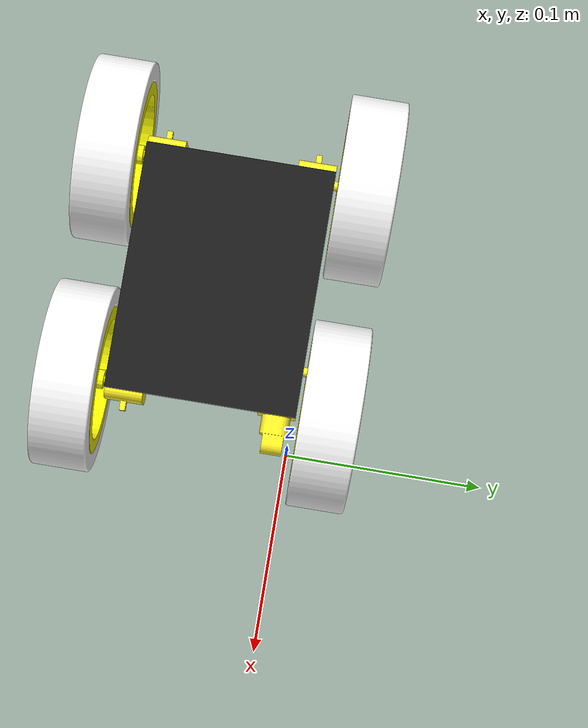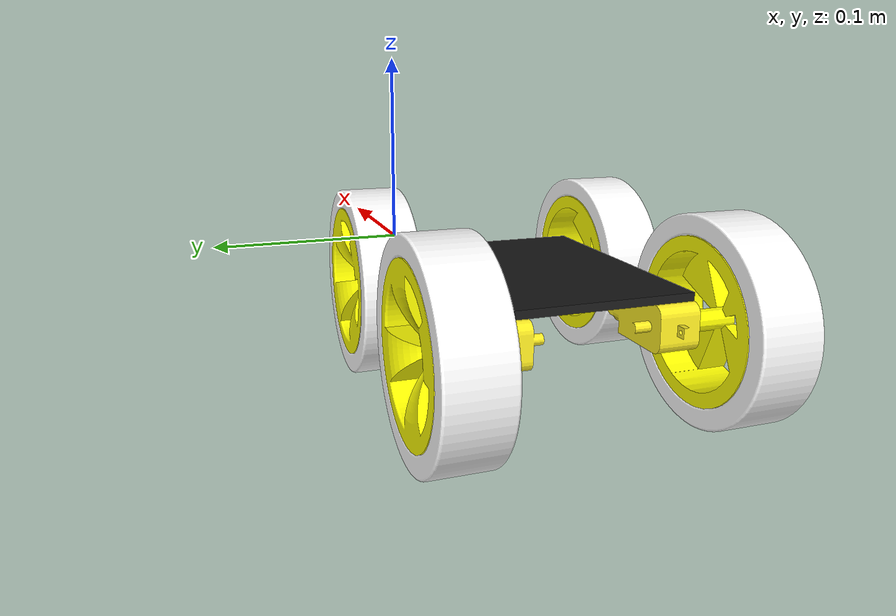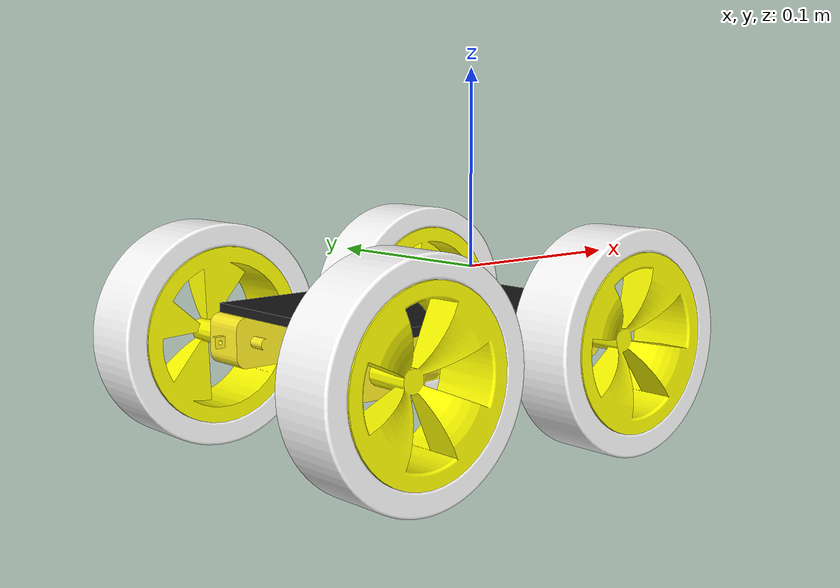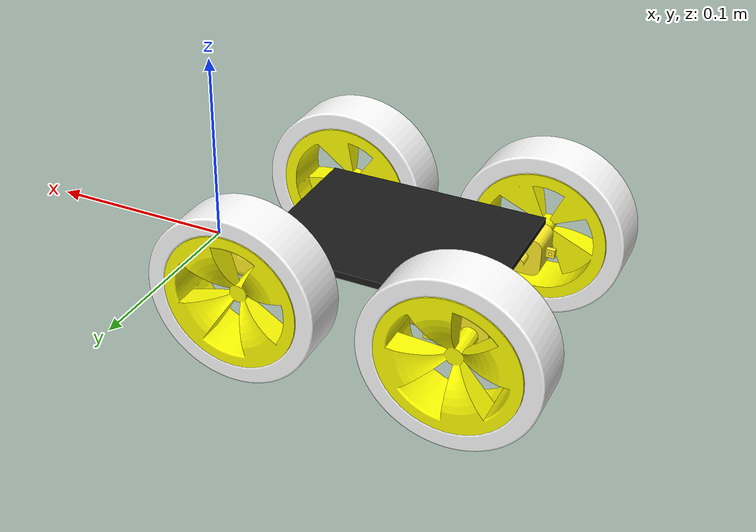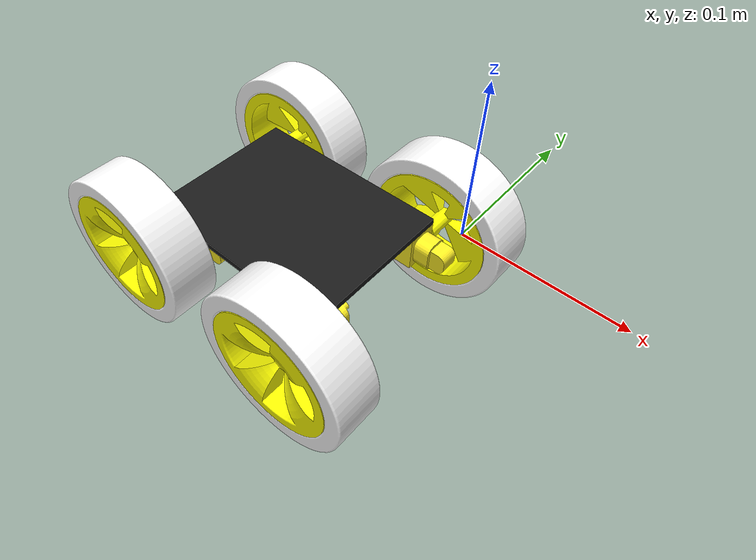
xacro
<?xml version="1.0"?>
<robot xmlns:xacro="http://www.ros.org/wiki/xacro">

	<!-- BASE LINK -->
	<link name="base_link">

	</link>

	<!-- CHASSIS LINK -->
	<joint name="chassis_joint" type="fixed">
		<parent link="base_link" />
		<child link="chassis_link"/>
		<origin xyz="0 0 0"/>
	</joint>

	<link name="chassis_link">
    	<inertial>
      		<origin xyz="-0.0852198749371951 -0.00475874794858555 0.04820238965209" rpy="0 0 0" />
      		<mass value="0.052" />
      		<inertia ixx="4.34026666666667E-05" ixy="1.38506496057656E-38" ixz="5.94094001424295E-21"
        	iyy="0.000116566666666667" iyz="-1.60681020716878E-23" izz="7.33026666666667E-05" />
    	</inertial>

    	<visual>
      		<origin xyz="0 0 0" rpy="0 0 0" />
      		<geometry>
        		<mesh filename="package://four_wheeled_robot/meshes/chassis_link.STL" />
      		</geometry>
      		<material name="">
        		<color rgba="0.101960784313725 0.101960784313725 0.101960784313725 1" />
      		</material>
    	</visual>

    	<collision>
      		<origin xyz="0 0 0" rpy="0 0 0" />
      		<geometry>
        		<mesh filename="package://four_wheeled_robot/meshes/chassis_link.STL" />
      		</geometry>
    	</collision>
  	</link>

	<gazebo reference="chassis_link">
		<material>Gazebo/Black</material>
	</gazebo>

	<!-- MOTOR1 LINK -->
	<joint name="motor1_joint" type="fixed">
    	<origin xyz="-0.13522 -0.088202 -0.0067587" rpy="0 0 0" />
    	<parent link="chassis_link" />
    	<child link="motor1_Link" />
    	<axis xyz="0 0 0" />
  	</joint>

	<link name="motor1_Link">
    	<inertial>
      		<origin xyz="0.00270571042552559 -4.16333634234434E-17 -0.011" rpy="0 0 0" />
      		<mass value="0.0194724998040617" />
      		<inertia ixx="1.30647781465528E-06" ixy="1.8766986143586E-22" ixz="-9.90836784579939E-21"
        	iyy="2.79499122781643E-06" iyz="-4.22738473239483E-24" izz="2.73953444645254E-06" />
    	</inertial>

    	<visual>
      		<origin xyz="0 0 0" rpy="0 0 0" />
      		<geometry>
        		<mesh filename="package://four_wheeled_robot/meshes/motor1_Link.STL" />
      		</geometry>
      		<material name="">
        		<color rgba="1 0.937254901960784 0.137254901960784 1" />
      		</material>
    	</visual>

    	<collision>
      		<origin xyz="0 0 0" rpy="0 0 0" />
      		<geometry>
        		<mesh filename="package://four_wheeled_robot/meshes/motor1_Link.STL" />
      		</geometry>
    	</collision>
  	</link>

	<gazebo reference="motor1_Link">
		<material>Gazebo/Yellow</material>
	</gazebo>

	<!-- WHEEL1 LINK -->
	<joint name="wheel1_joint" type="continuous">
    	<origin xyz="-0.0105 -0.032 -0.011" rpy="1.5708 0 0" />
    	<parent link="motor1_Link" />
    	<child link="wheel1_Link" />
    	<axis xyz="0 0 1" />
  	</joint>

	<link name="wheel1_Link">
    	<inertial>
      		<origin xyz="-6.66133814775094E-16 -3.01841884819964E-16 -0.00230999946278176" rpy="0 0 0" />
      		<mass value="0.047276589565131" />
      		<inertia ixx="2.48959993057061E-05" ixy="-5.1928000525321E-20" ixz="1.79367297624759E-19"
        	iyy="2.4895999305706E-05" iyz="-5.043743778255E-20" izz="4.25077560685963E-05" />
    	</inertial>

    	<visual>
      		<origin xyz="0 0 0" rpy="0 0 0" />
      		<geometry>
        		<mesh filename="package://four_wheeled_robot/meshes/wheel1_Link.STL" />
      		</geometry>
      		<material name="">
        		<color rgba="1 1 0 1" />
      		</material>
    	</visual>

    	<collision>
      		<origin xyz="0 0 0" rpy="0 0 0" />
      		<geometry>
        		<mesh filename="package://four_wheeled_robot/meshes/wheel1_Link.STL" />
      		</geometry>
    	</collision>
  	</link>

	<gazebo reference="wheel1_Link">
		<material>Gazebo/Yellow</material>
	</gazebo>

	<!-- TIRE1 LINK -->
	<joint name="tire1_joint" type="fixed">
    	<origin xyz="0 0 -0.005" rpy="0 0 0" />
    	<parent link="wheel1_Link" />
    	<child link="tire1_Link" />
	</joint>

	<link name="tire1_Link">
    	<inertial>
      		<origin xyz="0 -3.46944695195361E-18 -2.77555756156289E-17" rpy="0 0 0" />
      		<mass value="0.0900450328431281" />
      		<inertia ixx="9.29010340540992E-05" ixy="4.14441750853701E-20" ixz="2.68540865961104E-19"
        	iyy="9.29010340540992E-05" iyz="5.05977918171685E-21" izz="0.000172262082034564" />
    	</inertial>

    	<visual>
      		<origin xyz="0 0 0" rpy="0 0 0" />
      		<geometry>
        		<mesh filename="package://four_wheeled_robot/meshes/tire1_Link.STL" />
      		</geometry>
      		<material name="">
        		<color rgba="1 1 1 1" />
      		</material>
    	</visual>

    	<collision>
      		<origin xyz="0 0 0" rpy="0 0 0" />
      		<geometry>
        		<mesh filename="package://four_wheeled_robot/meshes/tire1_Link.STL" />
      		</geometry>
    	</collision>
  	</link>

	<gazebo reference="tire1_Link">
		<material>Gazebo/Black</material>
	</gazebo>

	<!-- MOTOR2 LINK -->
	<joint name="motor2_joint" type="fixed">
    	<origin xyz="-0.13522 -0.0082024 -0.0067587" rpy="0 0 0" />
    	<parent link="chassis_link" />
    	<child link="motor2_Link" />
    	<axis xyz="0 0 0" />
  	</joint>

	<link name="motor2_Link">
    	<inertial>
      		<origin xyz="0.00270571042552559 -3.12250225675825E-17 -0.011" rpy="0 0 0" />
      		<mass value="0.0194724998040617" />
      		<inertia ixx="1.30647781465528E-06" ixy="3.50642818155904E-22" ixz="-9.99085198409492E-21"
        	iyy="2.79499122781643E-06" iyz="8.53182582237749E-24" izz="2.73953444645254E-06" />
    	</inertial>

    	<visual>
      		<origin xyz="0 0 0" rpy="0 0 0" />
      		<geometry>
        		<mesh filename="package://four_wheeled_robot/meshes/motor2_Link.STL" />
      		</geometry>
      		<material name="">
        		<color rgba="1 0.937254901960784 0.137254901960784 1" />
      		</material>
    	</visual>

    	<collision>
      		<origin xyz="0 0 0" rpy="0 0 0" />
      		<geometry>
        		<mesh filename="package://four_wheeled_robot/meshes/motor2_Link.STL" />
      		</geometry>
    	</collision>
  	</link>

	<gazebo reference="motor2_Link">
		<material>Gazebo/Yellow</material>
	</gazebo>

	<!-- WHEEL2 LINK -->
	<joint name="wheel2_joint" type="continuous">
    	<origin xyz="-0.0105 0.032 -0.011" rpy="-1.5708 0 0" />
    	<parent link="motor2_Link" />
    	<child link="wheel2_Link" />
    	<axis xyz="0 0 -1" />
  	</joint>

	<link name="wheel2_Link">
    	<inertial>
      		<origin xyz="-2.24820162486594E-15 8.81239525796218E-16 -0.00230999946278173" rpy="0 0 0" />
      		<mass value="0.047276589565131" />
      		<inertia ixx="2.4895999305706E-05" ixy="-7.45367280092708E-20" ixz="7.79478520652575E-20"
        	iyy="2.4895999305706E-05" iyz="-9.64165431735149E-20" izz="4.25077560685963E-05" />
    	</inertial>

    	<visual>
      		<origin xyz="0 0 0" rpy="0 0 0" />
      		<geometry>
        		<mesh filename="package://four_wheeled_robot/meshes/wheel2_Link.STL" />
      		</geometry>
      		<material name="">
        		<color rgba="1 1 0 1" />
      		</material>
    	</visual>

    	<collision>
      		<origin xyz="0 0 0" rpy="0 0 0" />
      		<geometry>
        		<mesh filename="package://four_wheeled_robot/meshes/wheel2_Link.STL" />
      		</geometry>
    	</collision>
  	</link>

	<gazebo reference="wheel2_Link">
		<material>Gazebo/Yellow</material>
	</gazebo>

	<!-- TIRE2 LINK -->
	<joint name="tire2_joint" type="fixed">
    	<origin xyz="0 0 -0.005" rpy="0 0 0" />
    	<parent link="wheel2_Link" />
    	<child link="tire2_Link" />
  	</joint>

	<link name="tire2_Link">
    	<inertial>
      		<origin xyz="0 -3.46944695195361E-18 0" rpy="0 0 0" />
      		<mass value="0.0900450328431281" />
      		<inertia ixx="9.29010340540991E-05" ixy="-1.07413262716203E-20" ixz="-3.48850397206446E-22"
        	iyy="9.29010340540991E-05" iyz="-3.40168150669033E-21" izz="0.000172262082034564" />
    	</inertial>

    	<visual>
      		<origin xyz="0 0 0" rpy="0 0 0" />
      		<geometry>
        		<mesh filename="package://four_wheeled_robot/meshes/tire2_Link.STL" />
      		</geometry>
      		<material name="">
        		<color rgba="1 1 1 1" />
      		</material>
    	</visual>

    	<collision>
      		<origin xyz="0 0 0" rpy="0 0 0" />
      		<geometry>
        		<mesh filename="package://four_wheeled_robot/meshes/tire2_Link.STL" />
      		</geometry>
    	</collision>
  	</link>

	<gazebo reference="tire2_Link">
		<material>Gazebo/Black</material>
	</gazebo>

	<!-- MOTOR3 LINK -->
	<joint name="motor3_joint" type="fixed">
    	<origin xyz="-0.03522 -0.088202 -0.0067587" rpy="0 0 0" />
    	<parent link="chassis_link" />
    	<child link="motor3_Link" />
    	<axis xyz="0 0 0" />
  	</joint>

	<link name="motor3_Link">
    	<inertial>
      		<origin xyz="-0.0027057104255255 -2.77555756156289E-17 -0.0109999999999999" rpy="0 0 0" />
      		<mass value="0.0194724998040617" />
      		<inertia ixx="1.30647781465528E-06" ixy="-2.31398212112382E-22" ixz="2.67520476227251E-22"
        	iyy="2.79499122781643E-06" iyz="3.04492335017947E-23" izz="2.73953444645254E-06" />
    	</inertial>

    	<visual>
      		<origin xyz="0 0 0" rpy="0 0 0" />
      		<geometry>
        		<mesh filename="package://four_wheeled_robot/meshes/motor3_Link.STL" />
      		</geometry>
      		<material name="">
				<color rgba="1 0.937254901960784 0.137254901960784 1" />
      		</material>
    	</visual>

    	<collision>
      		<origin xyz="0 0 0" rpy="0 0 0" />
      		<geometry>
        		<mesh filename="package://four_wheeled_robot/meshes/motor3_Link.STL" />
      		</geometry>
    	</collision>
  	</link>

	<gazebo reference="motor3_Link">
		<material>Gazebo/Yellow</material>
	</gazebo>

	<!-- WHEEL3 LINK -->
	<joint name="wheel3_joint" type="continuous">
    	<origin xyz="0.0105 -0.032 -0.011" rpy="1.5708 0 0" />
    	<parent link="motor3_Link" />
    	<child link="wheel3_Link" />
    	<axis xyz="0 0 1" />
  	</joint>

	<link name="wheel3_Link">
    	<inertial>
      		<origin xyz="5.55111512312578E-16 4.33680868994202E-16 -0.00230999946278169" rpy="0 0 0" />
      		<mass value="0.047276589565131" />
      		<inertia ixx="2.48959993057062E-05" ixy="-2.95393951560817E-20" ixz="-1.1859142019731E-19"
        	iyy="2.48959993057061E-05" iyz="2.46499724573474E-20" izz="4.25077560685963E-05" />
    	</inertial>

    	<visual>
      		<origin xyz="0 0 0" rpy="0 0 0" />
      		<geometry>
        		<mesh filename="package://four_wheeled_robot/meshes/wheel3_Link.STL" />
      		</geometry>
      		<material name="">
        		<color rgba="1 1 0 1" />
      		</material>
    	</visual>

    	<collision>
      		<origin xyz="0 0 0" rpy="0 0 0" />
      		<geometry>
        		<mesh filename="package://four_wheeled_robot/meshes/wheel3_Link.STL" />
      		</geometry>
    	</collision>
  	</link>

	<gazebo reference="wheel3_Link">
		<material>Gazebo/Yellow</material>
	</gazebo>

	<!-- TIRE3 LINK -->
	<joint name="tire3_joint" type="fixed">
    	<origin xyz="0 0 -0.005" rpy="0 0 0" />
    	<parent link="wheel3_Link" />
    	<child link="tire3_Link" />
  	</joint>

	<link name="tire3_Link">
    	<inertial>
      		<origin xyz="-3.46944695195361E-18 6.93889390390723E-18 1.38777878078145E-17" rpy="0 0 0" />
      		<mass value="0.0900450328431282" />
      		<inertia ixx="9.29010340540992E-05" ixy="4.17490187137831E-20" ixz="1.32497514142168E-21"
        	iyy="9.29010340540992E-05" iyz="1.11298170171339E-20" izz="0.000172262082034564" />
    	</inertial>

    	<visual>
      		<origin xyz="0 0 0" rpy="0 0 0" />
      		<geometry>
        		<mesh filename="package://four_wheeled_robot/meshes/tire3_Link.STL" />
      		</geometry>
      		<material name="">
        		<color rgba="1 1 1 1" />
      		</material>
    	</visual>

    	<collision>
      		<origin xyz="0 0 0" rpy="0 0 0" />
      		<geometry>
        		<mesh filename="package://four_wheeled_robot/meshes/tire3_Link.STL" />
      		</geometry>
    	</collision>
  	</link>

	<gazebo reference="tire3_Link">
		<material>Gazebo/Black</material>
	</gazebo>

	<!-- MOTOR4 LINK -->
	<joint name="motor4_joint" type="fixed">
    	<origin xyz="-0.03522 -0.0082024 -0.0067587" rpy="0 0 0" />
    	<parent link="chassis_link" />
    	<child link="motor4_Link" />
    	<axis xyz="0 0 0" />
  	</joint>

	<link name="motor4_Link">
    	<inertial>
      		<origin xyz="-0.0027057104255255 -3.12250225675825E-17 -0.0109999999999999" rpy="0 0 0" />
      		<mass value="0.0194724998040617" />
      		<inertia ixx="1.30647781465528E-06" ixy="-2.5193748748934E-22" ixz="3.43693591802593E-22"
        	iyy="2.79499122781643E-06" iyz="-9.91040563271019E-24" izz="2.73953444645254E-06" />
    	</inertial>

    	<visual>
      		<origin xyz="0 0 0" rpy="0 0 0" />
      		<geometry>
        		<mesh filename="package://four_wheeled_robot/meshes/motor4_Link.STL" />
      		</geometry>
      		<material name="">
        		<color rgba="1 0.937254901960784 0.137254901960784 1" />
      		</material>
    	</visual>

    	<collision>
      		<origin xyz="0 0 0" rpy="0 0 0" />
      		<geometry>
        		<mesh filename="package://four_wheeled_robot/meshes/motor4_Link.STL" />
      		</geometry>
    	</collision>
  	</link>

	<gazebo reference="motor4_Link">
		<material>Gazebo/Yellow</material>
	</gazebo>

	<!-- WHEEL4 LINK -->
	<joint name="wheel4_joint" type="continuous">
    	<origin xyz="0.0105 0.032 -0.011" rpy="-1.5708 0 0" />
    	<parent link="motor4_Link" />
    	<child link="wheel4_Link" />
    	<axis xyz="0 0 -1" />
  	</joint>

	<link name="wheel4_Link">
    	<inertial>
      		<origin xyz="-6.73072708679001E-16 -2.1163626406917E-16 -0.00230999946278174" rpy="0 0 0" />
      		<mass value="0.047276589565131" />
      		<inertia ixx="2.48959993057061E-05" ixy="-6.81810082245302E-20" ixz="1.03831974662023E-19"
        	iyy="2.4895999305706E-05" iyz="-5.99868683581929E-20" izz="4.25077560685963E-05" />
    	</inertial>

    	<visual>
      		<origin xyz="0 0 0" rpy="0 0 0" />
      		<geometry>
        		<mesh filename="package://four_wheeled_robot/meshes/wheel4_Link.STL" />
      		</geometry>
      		<material name="">
        		<color rgba="1 1 0 1" />
      		</material>
    	</visual>

    	<collision>
      		<origin xyz="0 0 0" rpy="0 0 0" />
      		<geometry>
        		<mesh filename="package://four_wheeled_robot/meshes/wheel4_Link.STL" />
      		</geometry>
    	</collision>
  	</link>

	<gazebo reference="wheel4_Link">
		<material>Gazebo/Yellow</material>
	</gazebo>

	<!-- TIRE4 LINK -->
	<joint name="tire4_joint" type="fixed">
    	<origin xyz="0 0 0.01" rpy="0 0 0" />
    	<parent link="wheel4_Link" />
    	<child link="tire4_Link" />
  	</joint>

	<link name="tire4_Link">
    	<inertial>
      		<origin xyz="2.42861286636753E-17 3.46944695195361E-18 -0.015" rpy="0 0 0" />
      		<mass value="0.0900450328431281" />
      		<inertia ixx="9.29010340540991E-05" ixy="-4.79914750698499E-20" ixz="-3.79941895281415E-21"
        	iyy="9.29010340540991E-05" iyz="-6.71686272134588E-21" izz="0.000172262082034564" />
    	</inertial>

    	<visual>
      		<origin xyz="0 0 0" rpy="0 0 0" />
      		<geometry>
        		<mesh filename="package://four_wheeled_robot/meshes/tire4_Link.STL" />
      		</geometry>
      		<material name="">
        		<color rgba="1 1 1 1" />
      		</material>
    	</visual>

    	<collision>
      		<origin xyz="0 0 0" rpy="0 0 0" />
      		<geometry>
        		<mesh filename="package://four_wheeled_robot/meshes/tire4_Link.STL" />
      		</geometry>
    	</collision>
  	</link>

	<gazebo reference="tire4_Link">
		<material>Gazebo/Black</material>
	</gazebo>
</robot>
